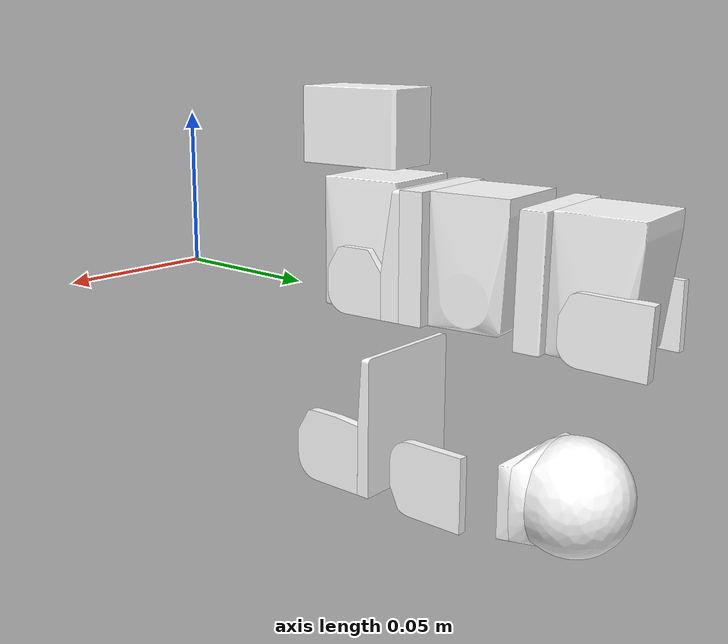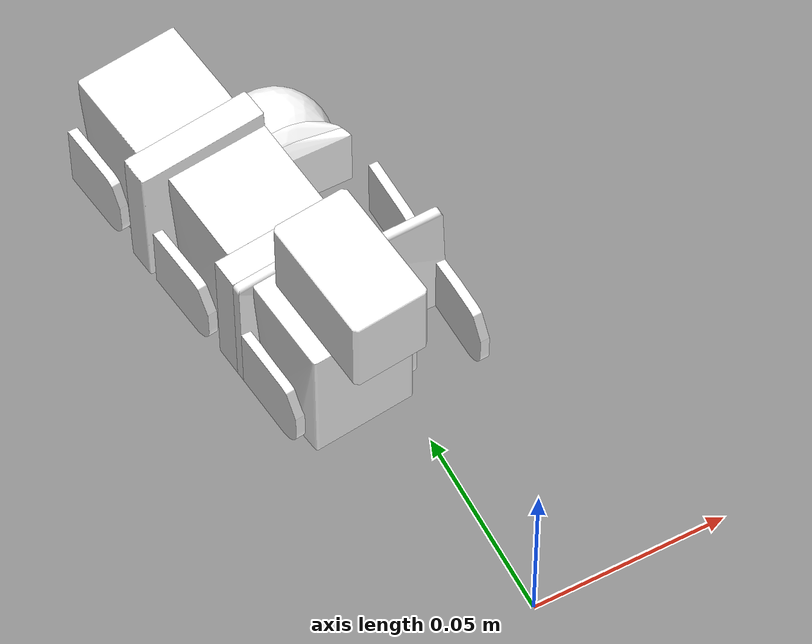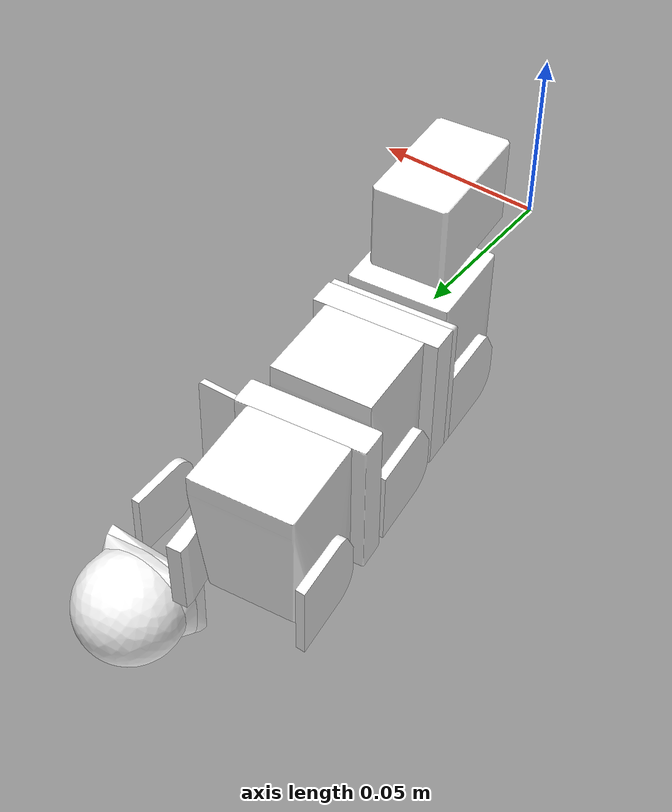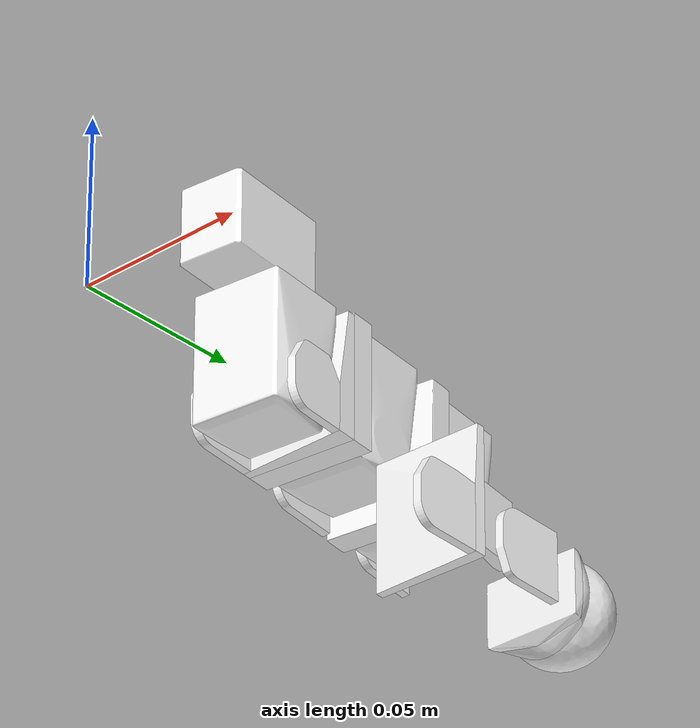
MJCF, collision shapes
<!-- finger.xml -->
<mujoco model="finger">
  <compiler angle="radian"/>
  <asset>
    <!-- base -->
    <mesh name="finger_palm_servo" file="robot_meshes/finger_palm_servo_part0.obj"/>
    <mesh name="finger_base" file="robot_meshes/finger_base_servo_part0.obj"/>
    <mesh name="finger_base_lever_part0" file="robot_meshes/finger_base_lever_part0.obj"/>
    <mesh name="finger_base_lever_part1" file="robot_meshes/finger_base_lever_part1.obj"/>
    <mesh name="finger_base_lever_part2" file="robot_meshes/finger_base_lever_part2.obj"/>
    <mesh name="finger_grammar1" file="robot_meshes/finger_grammar1_part0.obj"/>

    <!-- middle -->
    <mesh name="finger_middle" file="robot_meshes/finger_middle_servo_part0.obj"/>
    <mesh name="finger_middle_lever_part0" file="robot_meshes/finger_middle_lever_part0.obj"/>
    <mesh name="finger_middle_lever_part1" file="robot_meshes/finger_middle_lever_part1.obj"/>
    <mesh name="finger_middle_lever_part2" file="robot_meshes/finger_middle_lever_part2.obj"/>
    <mesh name="finger_grammar2" file="robot_meshes/finger_grammar2_part0.obj"/>

    <!-- end -->
    <mesh name="finger_end" file="robot_meshes/finger_end_servo_part0.obj"/>
    <mesh name="finger_end_lever_part0" file="robot_meshes/finger_end_lever_part0.obj"/>
    <mesh name="finger_end_lever_part1" file="robot_meshes/finger_end_lever_part1.obj"/>
    <mesh name="finger_end_lever_part2" file="robot_meshes/finger_end_lever_part2.obj"/>
    <mesh name="finger_end_lever_part3" file="robot_meshes/finger_end_lever_part3.obj"/>
     <mesh name="finger_tip_part0" file="robot_meshes/finger_tip_rounded_part0.obj"/>
     <mesh name="finger_tip_part1" file="robot_meshes/finger_tip_rounded_part1.obj"/>
     <mesh name="finger_tip_part2" file="robot_meshes/finger_tip_rounded_part2.obj"/>
     <mesh name="finger_tip_part3" file="robot_meshes/finger_tip_rounded_part3.obj"/>

    <!-- Visual Meshes -->
    <mesh name="finger_palm_servo_vis" file="robot_meshes/visual/finger_palm_servo_vis.obj"/>
    <mesh name="finger_base_vis" file="robot_meshes/visual/finger_base_vis.obj"/>
    <mesh name="finger_base_lever_vis" file="robot_meshes/visual/finger_base_lever_vis.obj"/>
    <mesh name="finger_grammar1_vis" file="robot_meshes/visual/finger_grammar1_vis.obj"/>
    <mesh name="finger_middle_vis" file="robot_meshes/visual/finger_middle_vis.obj"/>
    <mesh name="finger_middle_lever_vis" file="robot_meshes/visual/finger_middle_lever_vis.obj"/>
    <mesh name="finger_grammar2_vis" file="robot_meshes/visual/finger_grammar2_vis.obj"/>
    <mesh name="finger_end_vis" file="robot_meshes/visual/finger_end_vis.obj"/>
    <mesh name="finger_end_lever_vis" file="robot_meshes/visual/finger_end_lever_vis.obj"/>
     <mesh name="finger_tip_vis" file="robot_meshes/visual/finger_tip_rounded_vis.obj"/>
  </asset>

  <default>
      <geom solimp="0.999 0.999 0.001 0.0001 1" solref="0.0001 1" friction=".2" condim="6" margin="0.002"/>
      <joint damping="0.01" frictionloss="0.001" armature="0.0015"/>
      <default class="servo">
        <position kp="0.5" kv="0.01"/>
         <default class="tip"><geom friction="0.2 0.002 0.0001"/></default>
        <default class="hand"><geom friction="0.8 0.01 0.001"/></default>
    </default>

  </default>

  <contact>
    <exclude body1="finger_base"         body2="palm"/>
    <exclude body1="palm"         body2="finger_base"/>
    <exclude body1="finger_palm_servo"  body2="palm"/>
    <exclude body1="palm"  body2="finger_palm_servo"/>
    <exclude body1="finger_base_lever"          body2="palm"/>
    <exclude body1="palm"          body2="finger_base_lever"/>
    <!-- stop all intra‑finger collisions -->
    <!-- but allow inter-finger collisions -->
    <exclude body1="finger_root"         body2="finger_palm_servo"/>
    <exclude body1="finger_root"         body2="finger_base"/>
    <exclude body1="finger_root"         body2="finger_base_lever"/>
    <exclude body1="finger_root"         body2="finger_middle"/>
    <exclude body1="finger_root"         body2="finger_end"/>
    <exclude body1="finger_palm_servo"  body2="finger_base"/>
    <exclude body1="finger_palm_servo"  body2="finger_base_lever"/>
    <exclude body1="finger_palm_servo"  body2="finger_middle"/>
    <exclude body1="finger_palm_servo"  body2="finger_end"/>
    <exclude body1="finger_base"        body2="finger_base_lever"/>
    <exclude body1="finger_base"        body2="finger_middle"/>
    <exclude body1="finger_base"        body2="finger_end"/>
    <exclude body1="finger_base_lever"          body2="finger_middle"/>
    <exclude body1="finger_base_lever"          body2="finger_end"/>
    <exclude body1="finger_middle"      body2="finger_end"/>
  </contact>

  <worldbody>
    <body name="finger_root" pos="0 0 0">
      <body name="finger_palm_servo" pos="0 0 0">
            <geom name="finger_palm_servo_geom" type="mesh" mesh="finger_palm_servo" group="1" rgba="1 1 1 1"/>
            <geom name="finger_palm_servo_vis_geom" type="mesh" mesh="finger_palm_servo_vis" group="0" contype="0" conaffinity="0"/>
            <body name="finger_base" pos="0 0 0">
                <joint name="finger_palm_joint" type="hinge" pos="0.01863 0.06172 -0.028" axis="0 0 1" range="-0.698 0.698" limited="true"/>
                <geom name="finger_base_geom" type="mesh" mesh="finger_base" group="1" rgba="1 1 1 1"/>
                <geom name="finger_base_vis_geom" type="mesh" mesh="finger_base_vis" group="0" contype="0" conaffinity="0"/>
                <body name="finger_base_lever" pos="0 0 0">
                    <joint name="finger_base_joint" type="hinge" pos="0.03572 0.06215 -0.03264" axis="-0.99941918 -0.03407779  0." range="0 1.5708" limited="true"/>
                    <geom name="finger_base_lever_part0_geom" type="mesh" mesh="finger_base_lever_part0" group="1" rgba="1 1 1 1"/>
                    <geom name="finger_base_lever_part1_geom" type="mesh" mesh="finger_base_lever_part1" group="1" rgba="1 1 1 1"/>
                    <geom name="finger_base_lever_part2_geom" type="mesh" mesh="finger_base_lever_part2" group="1" rgba="1 1 1 1"/>
                    <geom name="finger_base_lever_vis_geom" type="mesh" mesh="finger_base_lever_vis" group="0" contype="0" conaffinity="0"/>
                    <body name="finger_grammar1" pos="0 0 0">
                        <geom name="finger_grammar1_geom" type="mesh" mesh="finger_grammar1" group="1" rgba="1 1 1 1"/>
                        <geom name="finger_grammar1_vis_geom" type="mesh" mesh="finger_grammar1_vis" group="0" contype="0" conaffinity="0"/>
                        <body name="finger_middle" pos="0 0 0">
                            <geom name="finger_middle_geom" type="mesh" mesh="finger_middle" group="1" rgba="1 1 1 1"/>
                            <geom name="finger_middle_vis_geom" type="mesh" mesh="finger_middle_vis" group="0" contype="0" conaffinity="0"/>
                            <body name="finger_middle_lever" pos="0 0 0">
                                <joint name="finger_middle_joint" type="hinge" pos="0.03457 0.09362 -0.03378" axis="-0.99941918 -0.03407779  0." range="0 1.5708" limited="true"/>
                                <geom name="finger_middle_lever_part0_geom" type="mesh" mesh="finger_middle_lever_part0" group="1" rgba="1 1 1 1"/>
                                <geom name="finger_middle_lever_part1_geom" type="mesh" mesh="finger_middle_lever_part1" group="1" rgba="1 1 1 1"/>
                                <geom name="finger_middle_lever_part2_geom" type="mesh" mesh="finger_middle_lever_part2" group="1" rgba="1 1 1 1"/>
                                <geom name="finger_middle_lever_vis_geom" type="mesh" mesh="finger_middle_lever_vis" group="0" contype="0" conaffinity="0"/>
                                <body name="finger_grammar2" pos="0 0 0">
                                    <geom name="finger_grammar2_geom" type="mesh" mesh="finger_grammar2" group="1" rgba="1 1 1 1"/>
                                    <geom name="finger_grammar2_vis_geom" type="mesh" mesh="finger_grammar2_vis" group="0" contype="0" conaffinity="0"/>
                                    <body name="finger_end" pos="0 0 0">
                                        <geom name="finger_end_geom" type="mesh" mesh="finger_end" group="1" rgba="1 1 1 1"/>
                                        <geom name="finger_end_vis_geom" type="mesh" mesh="finger_end_vis" group="0" contype="0" conaffinity="0"/>
                                        <body name="finger_end_lever" pos="0 0 0">
                                            <joint name="finger_end_joint" type="hinge" pos="0.03353 0.1251 -0.03478" axis="-0.99941884 -0.03408779  0." range="0 1.5708" limited="true"/>
                                            <geom name="finger_end_lever_part0_geom" type="mesh" mesh="finger_end_lever_part0" group="1" rgba="1 1 1 1"/>
                                            <geom name="finger_end_lever_part1_geom" type="mesh" mesh="finger_end_lever_part1" group="1" rgba="1 1 1 1"/>
                                            <geom name="finger_end_lever_part2_geom" type="mesh" mesh="finger_end_lever_part2" group="1" rgba="1 1 1 1"/>
                                            <geom name="finger_end_lever_part3_geom" type="mesh" mesh="finger_end_lever_part3" group="1" rgba="1 1 1 1"/>
                                            <geom name="finger_end_lever_vis_geom" type="mesh" mesh="finger_end_lever_vis" group="0" contype="0" conaffinity="0"/>
                                            <body name="finger_tip" pos="0 0 0">
                                                <geom class="tip" name="finger_tip_part0_geom" type="mesh" mesh="finger_tip_part0" group="1" rgba="1 1 1 1"/>
                                                <geom class="tip" name="finger_tip_part1_geom" type="mesh" mesh="finger_tip_part1" group="1" rgba="1 1 1 1"/>
                                                <geom class="tip" name="finger_tip_part2_geom" type="mesh" mesh="finger_tip_part2" group="1" rgba="1 1 1 1"/>
                                                <geom class="tip" name="finger_tip_part3_geom" type="mesh" mesh="finger_tip_part3" group="1" rgba="1 1 1 1"/>
                                                <geom name="finger_tip_vis_geom" type="mesh" mesh="finger_tip_vis" group="0" contype="0" conaffinity="0"/>
                                            </body>
                                        </body>
                                    </body>
                                </body>
                            </body>
                        </body>
                    </body>
                </body>
            </body>
        </body>
    </body>

  </worldbody>

  <actuator>
    <position name="finger_palm_joint" class="servo" joint="finger_palm_joint" forcerange="-0.8 0.8" inheritrange="1"/>
    <position name="finger_base_joint" class="servo" joint="finger_base_joint" forcerange="-0.8 0.8" inheritrange="1"/>
    <position name="finger_middle_joint" class="servo" joint="finger_middle_joint" forcerange="-0.80 0.80" inheritrange="1"/>
    <position name="finger_end_joint" class="servo" joint="finger_end_joint" forcerange="-0.3 0.3" inheritrange="1"/>
  </actuator>
</mujoco>
